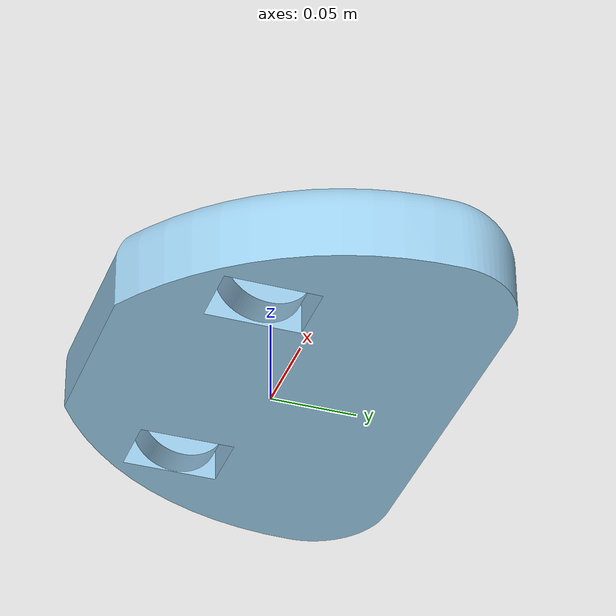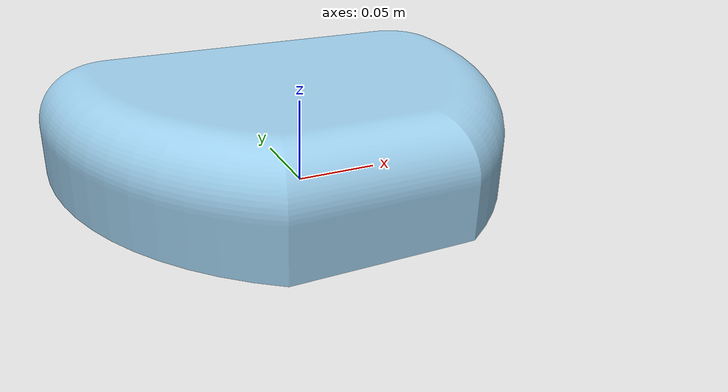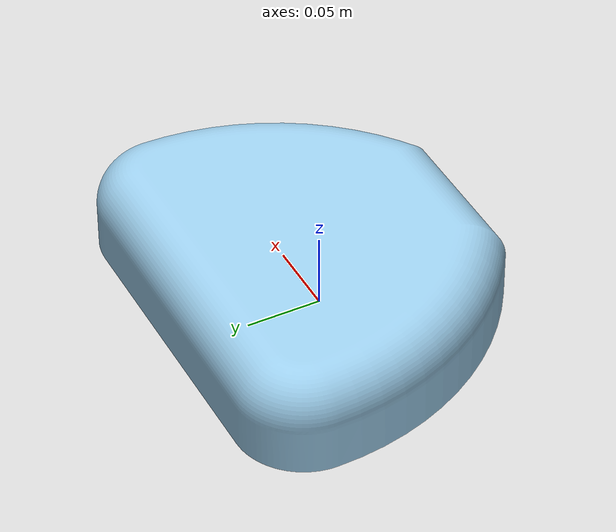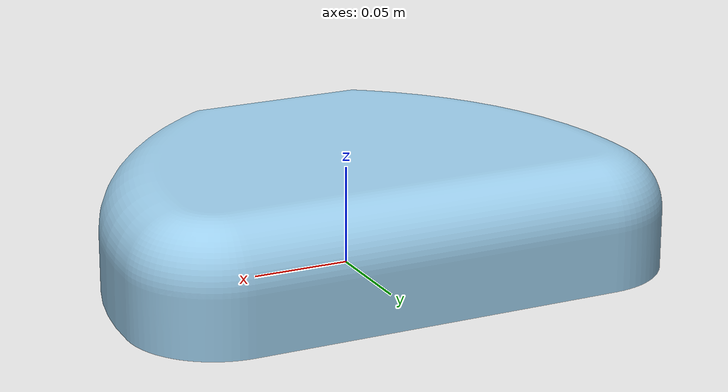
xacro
<?xml version="1.0"?>

<robot name="abot" xmlns:xacro="http://ros.org/wiki/xacro">

<xacro:include filename="$(find abot_description)/urdf/robot.gazebo.xacro"/>

<link name="base_link"></link>
<joint name="base_link_to_base" type="fixed">
<parent link="base_link"/>
<child link="chassis" />
<origin rpy="0.0 0 0" xyz="0 0 0"/>
</joint>
<link name="chassis">
<visual>
<origin xyz="9.21702e-10 0.00447478 0.0341544" rpy="0 -0 0" />
<geometry>
<mesh filename="package://abot_description/urdf/chassis.stl"/>
</geometry>
<material name="chassis_material">
<color rgba="0.615686 0.811765 0.929412 1.0"/>
</material>
</visual>
<collision>
<origin xyz="9.21702e-10 0.00447478 0.0341544" rpy="0 -0 0" />
<geometry>
<mesh filename="package://abot_description/urdf/chassis.stl"/>
</geometry>
<material name="chassis_material">
<color rgba="0.615686 0.811765 0.929412 1.0"/>
</material>
</collision>
<inertial>
<origin xyz="2.59429e-05 0.0125232 0.0332544" rpy="0 0 0"/>
<mass value="6.99004" />
<inertia ixx="0.0233749" ixy="1.03273e-05"  ixz="3.30741e-08" iyy="0.0358752" iyz="0.000125105" izz="0.0552125" />
</inertial>
</link>

<link name="wheel">
<visual>
<origin xyz="0 0 -0.009" rpy="-1.5708 -1.5708 0" />
<geometry>
<mesh filename="package://abot_description/urdf/wheel.stl"/>
</geometry>
<material name="wheel_material">
<color rgba="0.615686 0.811765 0.929412 1.0"/>
</material>
</visual>
<!-- Shapes for wheel -->
<collision>
<origin xyz="0 0 -0.009" rpy="0 -0 -1.5708" />
<geometry>
<cylinder length="0.018" radius="0.025" />
</geometry>
</collision>
<inertial>
<origin xyz="0 2.01808e-18 -0.009" rpy="0 0 0"/>
<mass value="1.26704" />
<inertia ixx="0.000232186" ixy="0"  ixz="0" iyy="0.000395951" iyz="0" izz="0.000232186" />
</inertial>
</link>

<joint name="RW" type="continuous">
<origin xyz="0.0846 -0.0295252 0.0241544" rpy="1.5708 -0 1.5708" />
<parent link="chassis" />
<child link="wheel" />
<axis xyz="0 0 -1"/>
<limit effort="1" velocity="20" lower="0" upper="6.28319"/>
<joint_properties friction="0.0"/>
</joint>

<!-- Transmission is important to link the joints and the controller -->
<transmission name="RM_trans">
    <type>transmission_interface/SimpleTransmission</type>
    <joint name="RW">
        <hardwareInterface>hardware_interface/VelocityJointInterface</hardwareInterface>
    </joint>
    <actuator name="RM_motor">
        <hardwareInterface>VelocityJointInterface</hardwareInterface>
        <mechanicalReduction>1</mechanicalReduction>
    </actuator>
</transmission>

<link name="wheel_2">
<visual>
<origin xyz="0 0 -0.009" rpy="1.5708 1.5708 0" />
<geometry>
<mesh filename="package://abot_description/urdf/wheel.stl"/>
</geometry>
<material name="wheel_material">
<color rgba="0.615686 0.811765 0.929412 1.0"/>
</material>
</visual>
<!-- Shapes for wheel -->
<collision>
<origin xyz="0 0 -0.009" rpy="3.14159 -0 1.5708" />
<geometry>
<cylinder length="0.018" radius="0.025" />
</geometry>
</collision>
<inertial>
<origin xyz="0 -2.01808e-18 -0.009" rpy="0 0 0"/>
<mass value="1.26704" />
<inertia ixx="0.000232186" ixy="0"  ixz="0" iyy="0.000395951" iyz="0" izz="0.000232186" />
</inertial>
</link>

<joint name="LW" type="continuous">
<origin xyz="-0.0846 -0.0295252 0.0241544" rpy="-1.5708 -0 1.5708" />
<parent link="chassis" />
<child link="wheel_2" />
<axis xyz="0 0 1"/>
<limit effort="1" velocity="20" lower="0" upper="6.28319"/>
<joint_properties friction="0.0"/>
</joint>

<!-- Transmission is important to link the joints and the controller -->
<transmission name="LM_trans">
    <type>transmission_interface/SimpleTransmission</type>
    <joint name="LW">
        <hardwareInterface>hardware_interface/VelocityJointInterface</hardwareInterface>
    </joint>
    <actuator name="LM_motor">
        <hardwareInterface>VelocityJointInterface</hardwareInterface>
        <mechanicalReduction>1</mechanicalReduction>
    </actuator>
</transmission>

</robot>
